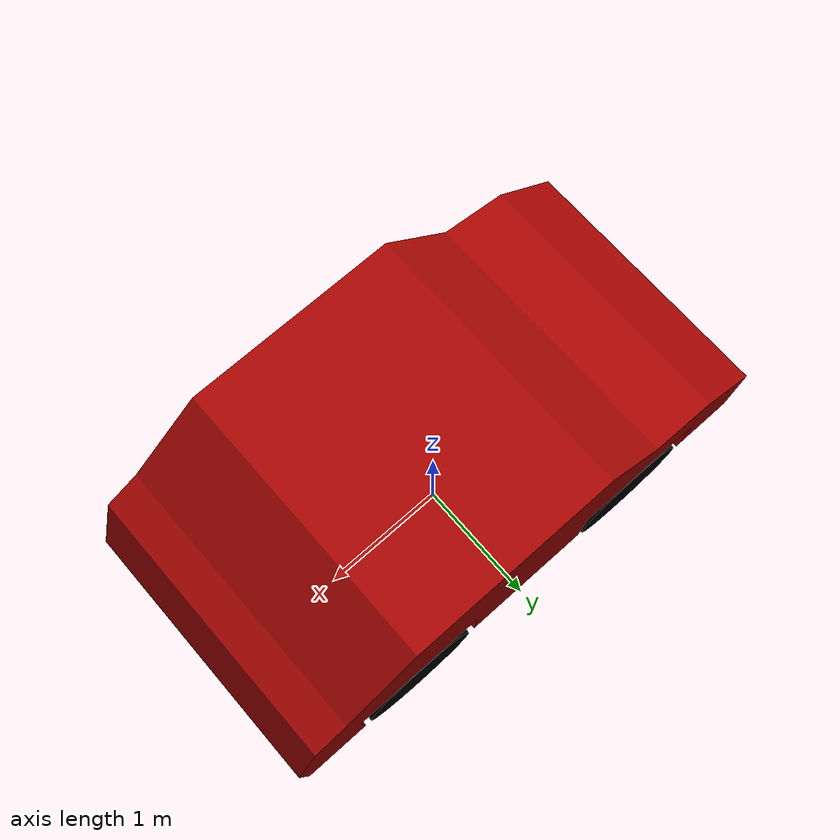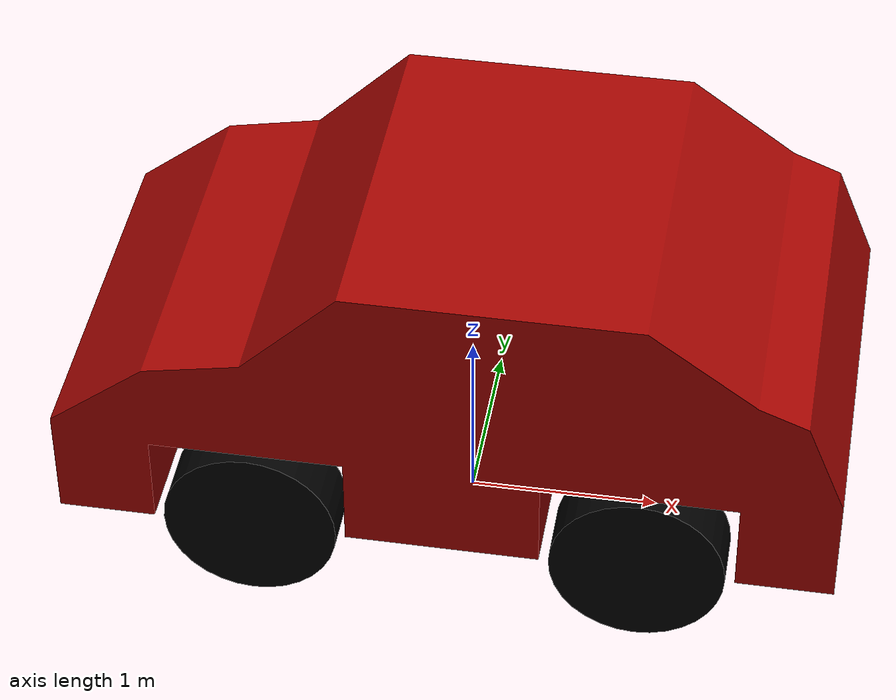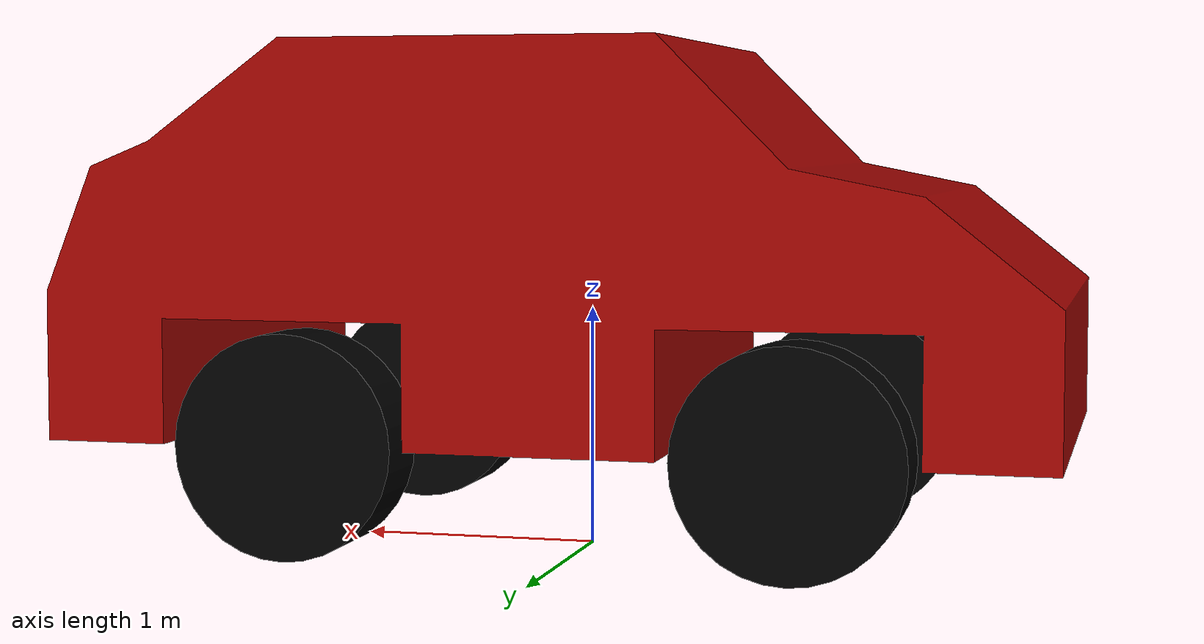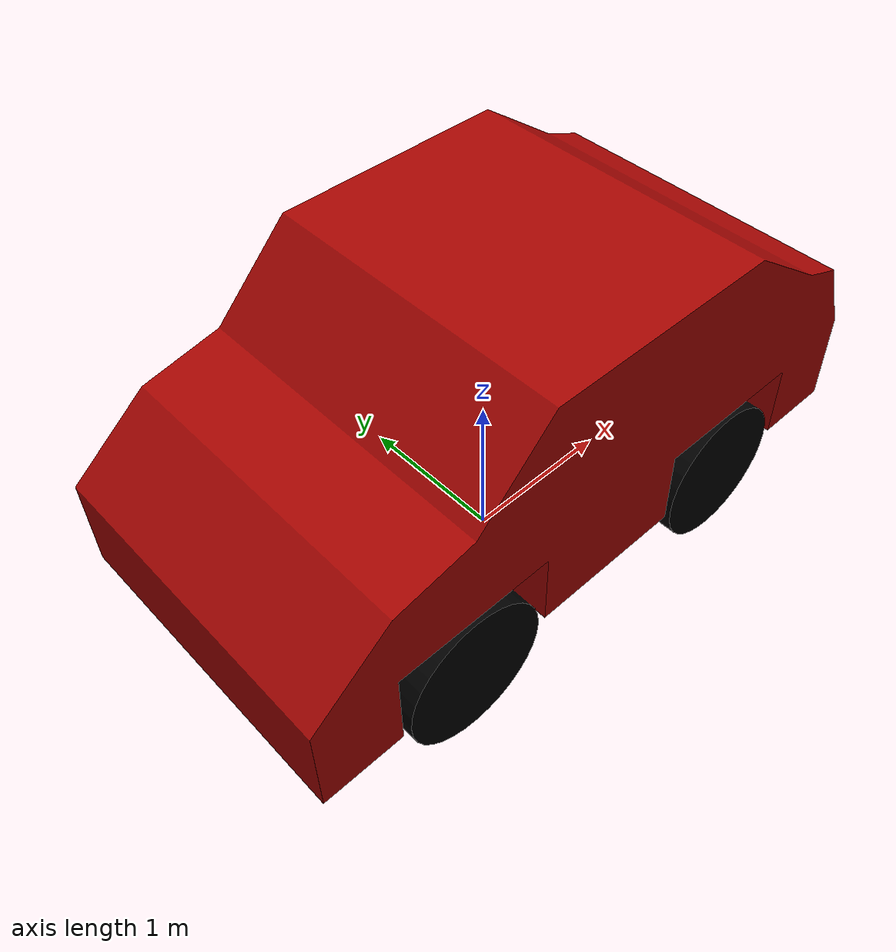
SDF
<?xml version="1.0" ?>
<sdf version="1.6">

  <model name="platform_to_follow">
      <pose>0 0 0  0 0 0</pose>
      <static>true</static>
      <link name="platform_to_follow">

        <collision name="collision">
          <pose>0 0 0.8 0 0 0</pose>
          <geometry>
             <mesh>
               <uri>model://platform_to_follow/follow_platform.dae</uri>
             </mesh>
          </geometry>
        </collision>

        <visual name="visual">
          <geometry>
            <mesh>
              <uri>model://platform_to_follow/follow_platform.dae</uri>
            </mesh>
          </geometry>
        </visual>
      </link>
    </model>
</sdf>
